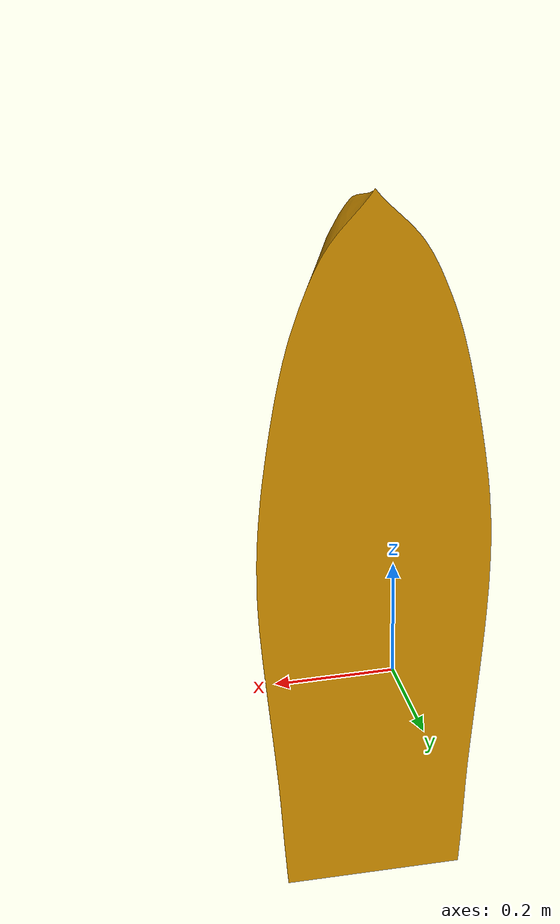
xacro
<?xml version="1.0"?>
<robot xmlns:xacro="http://www.ros.org/wiki/xacro" name="simple_asv_float">

  <xacro:property name="L" value="1.0"/>
  <xacro:property name="W" value="0.4"/>
  <xacro:property name="H" value="0.2"/>
  <xacro:property name="m" value="0.1"/>

  <xacro:property name="ixx" value="${(1.0/12.0)*m*(W*W + H*H)}"/>
  <xacro:property name="iyy" value="${(1.0/12.0)*m*(L*L + H*H)}"/>
  <xacro:property name="izz" value="${(1.0/12.0)*m*(L*L + W*W)}"/>

  <link name="base_link">
    <inertial>
      <origin xyz="0 0 0" rpy="0 0 0"/>
      <mass value="${m}"/>
      <inertia ixx="${ixx}" ixy="0" ixz="0" iyy="${iyy}" iyz="0" izz="${izz}"/>
    </inertial>
    <visual><geometry>
        <mesh filename="package://mrg_modimoop_description/models/mrg_modimoop_base/hull/hull.STL" scale="0.001 0.001 0.001"/>
      </geometry></visual>
      <material><color rgba="0.6 0.6 0.6 1.0"/></material>
    <collision>
    <geometry>
      <box>
        <size>1.20 0.40 0.25</size>
      </box>
    </geometry>
    </collision>
  </link>

  <gazebo>

  </gazebo>

</robot>
